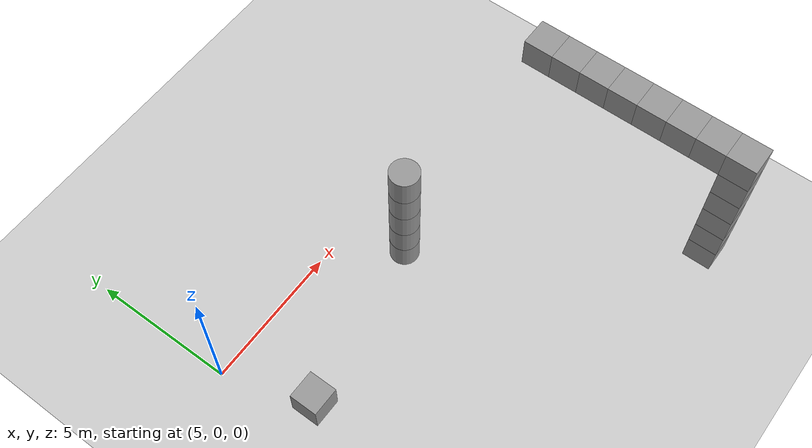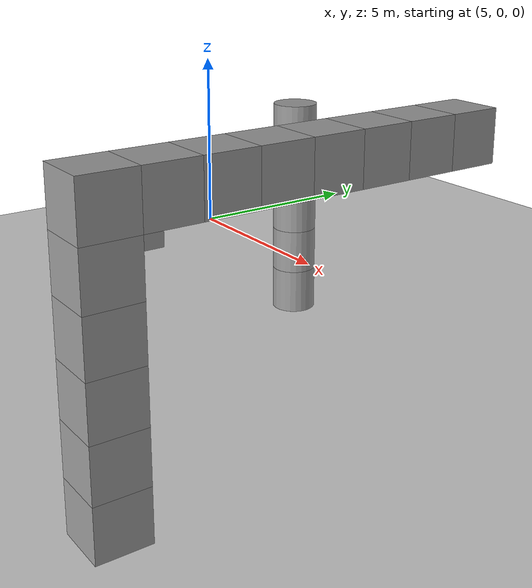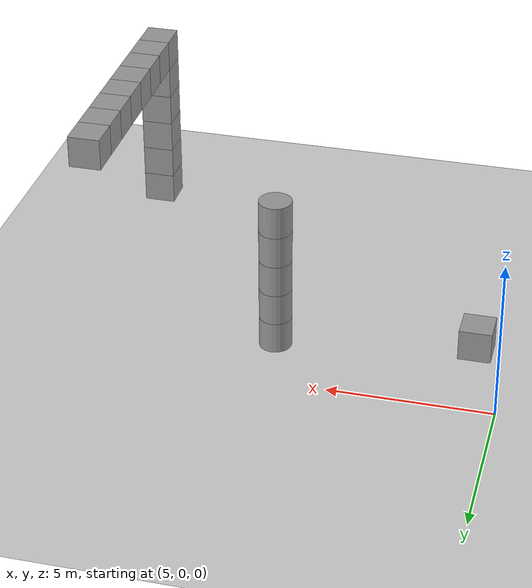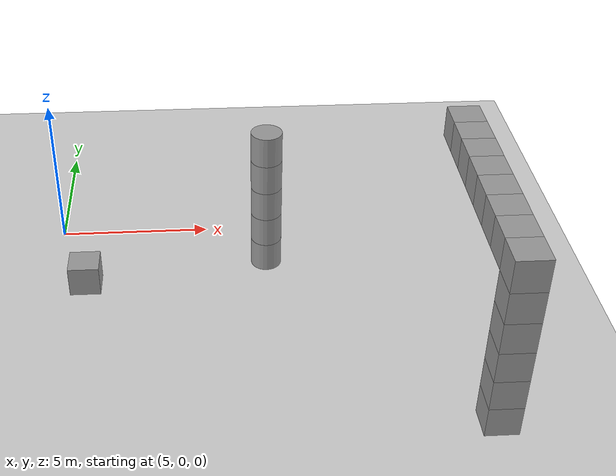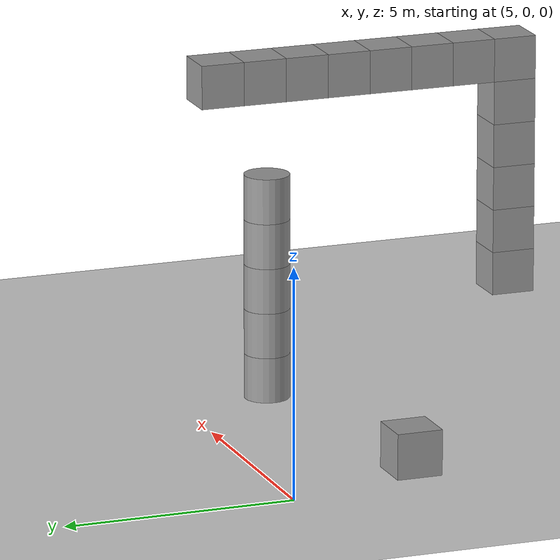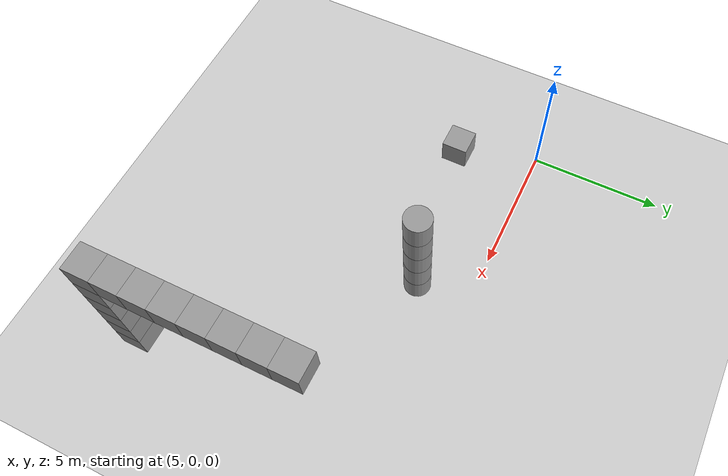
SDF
<sdf version="1.6">
 <world name="default">
  <model name="ground_plane">
   <static>1</static>
   <link name="link">
    <collision name="collision">
     <geometry><plane><normal>0 0 1</normal><size>100 100</size></plane></geometry>
     <surface>
      <contact><collide_bitmask>65535</collide_bitmask></contact>
      <friction><ode><mu>100</mu><mu2>50</mu2></ode></friction>
     </surface>
    </collision>
    <visual name="visual">
     <cast_shadows>0</cast_shadows>
     <geometry><plane><normal>0 0 1</normal><size>100 100</size></plane></geometry>
     <material>
      <script><uri>file://media/materials/scripts/gazebo.material</uri><name>Gazebo/Grey</name></script>
     </material>
    </visual>
   </link>
  </model>
  <model name="obs_cylinder">
   <link name="link">
    <inertial>
     <mass>1</mass>
     <inertia><ixx>0.145833</ixx><ixy>0</ixy><ixz>0</ixz><iyy>0.145833</iyy><iyz>0</iyz><izz>0.125</izz></inertia>
    </inertial>
    <visual name="visual">
     <geometry><cylinder><radius>0.5</radius><length>1</length></cylinder></geometry>
     <material>
      <script><name>Gazebo/Grey</name><uri>file://media/materials/scripts/gazebo.material</uri></script>
     </material>
    </visual>
    <collision name="collision">
     <geometry><cylinder><radius>0.5</radius><length>1</length></cylinder></geometry>
     <surface>
      <friction>
       <ode><mu>1</mu><mu2>1</mu2><fdir1>0 0 0</fdir1><slip1>0</slip1><slip2>0</slip2></ode>
       <torsional>
        <coefficient>1</coefficient>
        <patch_radius>0</patch_radius>
        <surface_radius>0</surface_radius>
        <use_patch_radius>1</use_patch_radius>
        <ode><slip>0</slip></ode>
       </torsional>
      </friction>
      <bounce><restitution_coefficient>0</restitution_coefficient><threshold>1e+06</threshold></bounce>
      <contact>
       <collide_without_contact>0</collide_without_contact>
       <collide_without_contact_bitmask>1</collide_without_contact_bitmask>
       <collide_bitmask>1</collide_bitmask>
       <ode>
        <soft_cfm>0</soft_cfm>
        <soft_erp>0.2</soft_erp>
        <kp>1e+13</kp>
        <kd>1</kd>
        <max_vel>0.01</max_vel>
        <min_depth>0</min_depth>
       </ode>
       <bullet>
        <split_impulse>1</split_impulse>
        <split_impulse_penetration_threshold>-0.01</split_impulse_penetration_threshold>
        <soft_cfm>0</soft_cfm>
        <soft_erp>0.2</soft_erp>
        <kp>1e+13</kp>
        <kd>1</kd>
       </bullet>
      </contact>
     </surface>
    </collision>
   </link>
   <static>1</static>
   <pose>12 -2 0.5 0 -0 0</pose>
  </model>
  <model name="obs_cylinder_clone">
   <link name="link">
    <inertial>
     <mass>1</mass>
     <inertia><ixx>0.145833</ixx><ixy>0</ixy><ixz>0</ixz><iyy>0.145833</iyy><iyz>0</iyz><izz>0.125</izz></inertia>
    </inertial>
    <visual name="visual">
     <geometry><cylinder><radius>0.5</radius><length>1</length></cylinder></geometry>
     <material>
      <script><name>Gazebo/Grey</name><uri>file://media/materials/scripts/gazebo.material</uri></script>
     </material>
    </visual>
    <collision name="collision">
     <geometry><cylinder><radius>0.5</radius><length>1</length></cylinder></geometry>
     <surface>
      <friction>
       <ode><mu>1</mu><mu2>1</mu2><fdir1>0 0 0</fdir1><slip1>0</slip1><slip2>0</slip2></ode>
       <torsional>
        <coefficient>1</coefficient>
        <patch_radius>0</patch_radius>
        <surface_radius>0</surface_radius>
        <use_patch_radius>1</use_patch_radius>
        <ode><slip>0</slip></ode>
       </torsional>
      </friction>
      <bounce><restitution_coefficient>0</restitution_coefficient><threshold>1e+06</threshold></bounce>
      <contact>
       <collide_without_contact>0</collide_without_contact>
       <collide_without_contact_bitmask>1</collide_without_contact_bitmask>
       <collide_bitmask>1</collide_bitmask>
       <ode>
        <soft_cfm>0</soft_cfm>
        <soft_erp>0.2</soft_erp>
        <kp>1e+13</kp>
        <kd>1</kd>
        <max_vel>0.01</max_vel>
        <min_depth>0</min_depth>
       </ode>
       <bullet>
        <split_impulse>1</split_impulse>
        <split_impulse_penetration_threshold>-0.01</split_impulse_penetration_threshold>
        <soft_cfm>0</soft_cfm>
        <soft_erp>0.2</soft_erp>
        <kp>1e+13</kp>
        <kd>1</kd>
       </bullet>
      </contact>
     </surface>
    </collision>
   </link>
   <static>1</static>
   <pose>12 -2 1.5 0 -0 0</pose>
  </model>
  <model name="obs_cylinder_clone_clone">
   <link name="link">
    <inertial>
     <mass>1</mass>
     <inertia><ixx>0.145833</ixx><ixy>0</ixy><ixz>0</ixz><iyy>0.145833</iyy><iyz>0</iyz><izz>0.125</izz></inertia>
    </inertial>
    <visual name="visual">
     <geometry><cylinder><radius>0.5</radius><length>1</length></cylinder></geometry>
     <material>
      <script><name>Gazebo/Grey</name><uri>file://media/materials/scripts/gazebo.material</uri></script>
     </material>
    </visual>
    <collision name="collision">
     <geometry><cylinder><radius>0.5</radius><length>1</length></cylinder></geometry>
     <surface>
      <friction>
       <ode><mu>1</mu><mu2>1</mu2><fdir1>0 0 0</fdir1><slip1>0</slip1><slip2>0</slip2></ode>
       <torsional>
        <coefficient>1</coefficient>
        <patch_radius>0</patch_radius>
        <surface_radius>0</surface_radius>
        <use_patch_radius>1</use_patch_radius>
        <ode><slip>0</slip></ode>
       </torsional>
      </friction>
      <bounce><restitution_coefficient>0</restitution_coefficient><threshold>1e+06</threshold></bounce>
      <contact>
       <collide_without_contact>0</collide_without_contact>
       <collide_without_contact_bitmask>1</collide_without_contact_bitmask>
       <collide_bitmask>1</collide_bitmask>
       <ode>
        <soft_cfm>0</soft_cfm>
        <soft_erp>0.2</soft_erp>
        <kp>1e+13</kp>
        <kd>1</kd>
        <max_vel>0.01</max_vel>
        <min_depth>0</min_depth>
       </ode>
       <bullet>
        <split_impulse>1</split_impulse>
        <split_impulse_penetration_threshold>-0.01</split_impulse_penetration_threshold>
        <soft_cfm>0</soft_cfm>
        <soft_erp>0.2</soft_erp>
        <kp>1e+13</kp>
        <kd>1</kd>
       </bullet>
      </contact>
     </surface>
    </collision>
   </link>
   <static>1</static>
   <pose>12 -2 2.5 0 -0 0</pose>
  </model>
  <model name="obs_cylinder_clone_clone_clone_0">
   <link name="link">
    <inertial>
     <mass>1</mass>
     <inertia><ixx>0.145833</ixx><ixy>0</ixy><ixz>0</ixz><iyy>0.145833</iyy><iyz>0</iyz><izz>0.125</izz></inertia>
    </inertial>
    <visual name="visual">
     <geometry><cylinder><radius>0.5</radius><length>1</length></cylinder></geometry>
     <material>
      <script><name>Gazebo/Grey</name><uri>file://media/materials/scripts/gazebo.material</uri></script>
     </material>
    </visual>
    <collision name="collision">
     <geometry><cylinder><radius>0.5</radius><length>1</length></cylinder></geometry>
     <surface>
      <friction>
       <ode><mu>1</mu><mu2>1</mu2><fdir1>0 0 0</fdir1><slip1>0</slip1><slip2>0</slip2></ode>
       <torsional>
        <coefficient>1</coefficient>
        <patch_radius>0</patch_radius>
        <surface_radius>0</surface_radius>
        <use_patch_radius>1</use_patch_radius>
        <ode><slip>0</slip></ode>
       </torsional>
      </friction>
      <bounce><restitution_coefficient>0</restitution_coefficient><threshold>1e+06</threshold></bounce>
      <contact>
       <collide_without_contact>0</collide_without_contact>
       <collide_without_contact_bitmask>1</collide_without_contact_bitmask>
       <collide_bitmask>1</collide_bitmask>
       <ode>
        <soft_cfm>0</soft_cfm>
        <soft_erp>0.2</soft_erp>
        <kp>1e+13</kp>
        <kd>1</kd>
        <max_vel>0.01</max_vel>
        <min_depth>0</min_depth>
       </ode>
       <bullet>
        <split_impulse>1</split_impulse>
        <split_impulse_penetration_threshold>-0.01</split_impulse_penetration_threshold>
        <soft_cfm>0</soft_cfm>
        <soft_erp>0.2</soft_erp>
        <kp>1e+13</kp>
        <kd>1</kd>
       </bullet>
      </contact>
     </surface>
    </collision>
   </link>
   <static>1</static>
   <pose>12 -2 3.5 0 -0 0</pose>
  </model>
  <model name="obs_cylinder_clone_clone_clone_0_clone_0">
   <link name="link">
    <inertial>
     <mass>1</mass>
     <inertia><ixx>0.145833</ixx><ixy>0</ixy><ixz>0</ixz><iyy>0.145833</iyy><iyz>0</iyz><izz>0.125</izz></inertia>
    </inertial>
    <visual name="visual">
     <geometry><cylinder><radius>0.5</radius><length>1</length></cylinder></geometry>
     <material>
      <script><name>Gazebo/Grey</name><uri>file://media/materials/scripts/gazebo.material</uri></script>
     </material>
    </visual>
    <collision name="collision">
     <geometry><cylinder><radius>0.5</radius><length>1</length></cylinder></geometry>
     <surface>
      <friction>
       <ode><mu>1</mu><mu2>1</mu2><fdir1>0 0 0</fdir1><slip1>0</slip1><slip2>0</slip2></ode>
       <torsional>
        <coefficient>1</coefficient>
        <patch_radius>0</patch_radius>
        <surface_radius>0</surface_radius>
        <use_patch_radius>1</use_patch_radius>
        <ode><slip>0</slip></ode>
       </torsional>
      </friction>
      <bounce><restitution_coefficient>0</restitution_coefficient><threshold>1e+06</threshold></bounce>
      <contact>
       <collide_without_contact>0</collide_without_contact>
       <collide_without_contact_bitmask>1</collide_without_contact_bitmask>
       <collide_bitmask>1</collide_bitmask>
       <ode>
        <soft_cfm>0</soft_cfm>
        <soft_erp>0.2</soft_erp>
        <kp>1e+13</kp>
        <kd>1</kd>
        <max_vel>0.01</max_vel>
        <min_depth>0</min_depth>
       </ode>
       <bullet>
        <split_impulse>1</split_impulse>
        <split_impulse_penetration_threshold>-0.01</split_impulse_penetration_threshold>
        <soft_cfm>0</soft_cfm>
        <soft_erp>0.2</soft_erp>
        <kp>1e+13</kp>
        <kd>1</kd>
       </bullet>
      </contact>
     </surface>
    </collision>
   </link>
   <static>1</static>
   <pose>12 -2 4.5 0 -0 0</pose>
  </model>
  <model name="obs_box_clone_1">
   <link name="link">
    <inertial>
     <mass>1</mass>
     <inertia>
      <ixx>0.166667</ixx>
      <ixy>0</ixy>
      <ixz>0</ixz>
      <iyy>0.166667</iyy>
      <iyz>0</iyz>
      <izz>0.166667</izz>
     </inertia>
    </inertial>
    <visual name="visual">
     <geometry><box><size>1 1 1</size></box></geometry>
     <material>
      <script><name>Gazebo/Grey</name><uri>file://media/materials/scripts/gazebo.material</uri></script>
     </material>
    </visual>
    <collision name="collision">
     <geometry><box><size>1 1 1</size></box></geometry>
     <surface>
      <friction>
       <ode><mu>1</mu><mu2>1</mu2><fdir1>0 0 0</fdir1><slip1>0</slip1><slip2>0</slip2></ode>
       <torsional>
        <coefficient>1</coefficient>
        <patch_radius>0</patch_radius>
        <surface_radius>0</surface_radius>
        <use_patch_radius>1</use_patch_radius>
        <ode><slip>0</slip></ode>
       </torsional>
      </friction>
      <bounce><restitution_coefficient>0</restitution_coefficient><threshold>1e+06</threshold></bounce>
      <contact>
       <collide_without_contact>0</collide_without_contact>
       <collide_without_contact_bitmask>1</collide_without_contact_bitmask>
       <collide_bitmask>1</collide_bitmask>
       <ode>
        <soft_cfm>0</soft_cfm>
        <soft_erp>0.2</soft_erp>
        <kp>1e+13</kp>
        <kd>1</kd>
        <max_vel>0.01</max_vel>
        <min_depth>0</min_depth>
       </ode>
       <bullet>
        <split_impulse>1</split_impulse>
        <split_impulse_penetration_threshold>-0.01</split_impulse_penetration_threshold>
        <soft_cfm>0</soft_cfm>
        <soft_erp>0.2</soft_erp>
        <kp>1e+13</kp>
        <kd>1</kd>
       </bullet>
      </contact>
     </surface>
    </collision>
   </link>
   <static>1</static>
   <pose>18 -10 0.5 0 -0 0</pose>
  </model>
  <model name="obs_box_clone_1_clone">
   <link name="link">
    <inertial>
     <mass>1</mass>
     <inertia>
      <ixx>0.166667</ixx>
      <ixy>0</ixy>
      <ixz>0</ixz>
      <iyy>0.166667</iyy>
      <iyz>0</iyz>
      <izz>0.166667</izz>
     </inertia>
    </inertial>
    <visual name="visual">
     <geometry><box><size>1 1 1</size></box></geometry>
     <material>
      <script><name>Gazebo/Grey</name><uri>file://media/materials/scripts/gazebo.material</uri></script>
     </material>
    </visual>
    <collision name="collision">
     <geometry><box><size>1 1 1</size></box></geometry>
     <surface>
      <friction>
       <ode><mu>1</mu><mu2>1</mu2><fdir1>0 0 0</fdir1><slip1>0</slip1><slip2>0</slip2></ode>
       <torsional>
        <coefficient>1</coefficient>
        <patch_radius>0</patch_radius>
        <surface_radius>0</surface_radius>
        <use_patch_radius>1</use_patch_radius>
        <ode><slip>0</slip></ode>
       </torsional>
      </friction>
      <bounce><restitution_coefficient>0</restitution_coefficient><threshold>1e+06</threshold></bounce>
      <contact>
       <collide_without_contact>0</collide_without_contact>
       <collide_without_contact_bitmask>1</collide_without_contact_bitmask>
       <collide_bitmask>1</collide_bitmask>
       <ode>
        <soft_cfm>0</soft_cfm>
        <soft_erp>0.2</soft_erp>
        <kp>1e+13</kp>
        <kd>1</kd>
        <max_vel>0.01</max_vel>
        <min_depth>0</min_depth>
       </ode>
       <bullet>
        <split_impulse>1</split_impulse>
        <split_impulse_penetration_threshold>-0.01</split_impulse_penetration_threshold>
        <soft_cfm>0</soft_cfm>
        <soft_erp>0.2</soft_erp>
        <kp>1e+13</kp>
        <kd>1</kd>
       </bullet>
      </contact>
     </surface>
    </collision>
   </link>
   <static>1</static>
   <pose>18 -10 1.5 0 -0 0</pose>
  </model>
  <model name="obs_box_clone_1_clone_clone">
   <link name="link">
    <inertial>
     <mass>1</mass>
     <inertia>
      <ixx>0.166667</ixx>
      <ixy>0</ixy>
      <ixz>0</ixz>
      <iyy>0.166667</iyy>
      <iyz>0</iyz>
      <izz>0.166667</izz>
     </inertia>
    </inertial>
    <visual name="visual">
     <geometry><box><size>1 1 1</size></box></geometry>
     <material>
      <script><name>Gazebo/Grey</name><uri>file://media/materials/scripts/gazebo.material</uri></script>
     </material>
    </visual>
    <collision name="collision">
     <geometry><box><size>1 1 1</size></box></geometry>
     <surface>
      <friction>
       <ode><mu>1</mu><mu2>1</mu2><fdir1>0 0 0</fdir1><slip1>0</slip1><slip2>0</slip2></ode>
       <torsional>
        <coefficient>1</coefficient>
        <patch_radius>0</patch_radius>
        <surface_radius>0</surface_radius>
        <use_patch_radius>1</use_patch_radius>
        <ode><slip>0</slip></ode>
       </torsional>
      </friction>
      <bounce><restitution_coefficient>0</restitution_coefficient><threshold>1e+06</threshold></bounce>
      <contact>
       <collide_without_contact>0</collide_without_contact>
       <collide_without_contact_bitmask>1</collide_without_contact_bitmask>
       <collide_bitmask>1</collide_bitmask>
       <ode>
        <soft_cfm>0</soft_cfm>
        <soft_erp>0.2</soft_erp>
        <kp>1e+13</kp>
        <kd>1</kd>
        <max_vel>0.01</max_vel>
        <min_depth>0</min_depth>
       </ode>
       <bullet>
        <split_impulse>1</split_impulse>
        <split_impulse_penetration_threshold>-0.01</split_impulse_penetration_threshold>
        <soft_cfm>0</soft_cfm>
        <soft_erp>0.2</soft_erp>
        <kp>1e+13</kp>
        <kd>1</kd>
       </bullet>
      </contact>
     </surface>
    </collision>
   </link>
   <static>1</static>
   <pose>18 -10 2.5 0 -0 0</pose>
  </model>
  <model name="obs_box_clone_1_clone_clone_clone">
   <link name="link">
    <inertial>
     <mass>1</mass>
     <inertia>
      <ixx>0.166667</ixx>
      <ixy>0</ixy>
      <ixz>0</ixz>
      <iyy>0.166667</iyy>
      <iyz>0</iyz>
      <izz>0.166667</izz>
     </inertia>
    </inertial>
    <visual name="visual">
     <geometry><box><size>1 1 1</size></box></geometry>
     <material>
      <script><name>Gazebo/Grey</name><uri>file://media/materials/scripts/gazebo.material</uri></script>
     </material>
    </visual>
    <collision name="collision">
     <geometry><box><size>1 1 1</size></box></geometry>
     <surface>
      <friction>
       <ode><mu>1</mu><mu2>1</mu2><fdir1>0 0 0</fdir1><slip1>0</slip1><slip2>0</slip2></ode>
       <torsional>
        <coefficient>1</coefficient>
        <patch_radius>0</patch_radius>
        <surface_radius>0</surface_radius>
        <use_patch_radius>1</use_patch_radius>
        <ode><slip>0</slip></ode>
       </torsional>
      </friction>
      <bounce><restitution_coefficient>0</restitution_coefficient><threshold>1e+06</threshold></bounce>
      <contact>
       <collide_without_contact>0</collide_without_contact>
       <collide_without_contact_bitmask>1</collide_without_contact_bitmask>
       <collide_bitmask>1</collide_bitmask>
       <ode>
        <soft_cfm>0</soft_cfm>
        <soft_erp>0.2</soft_erp>
        <kp>1e+13</kp>
        <kd>1</kd>
        <max_vel>0.01</max_vel>
        <min_depth>0</min_depth>
       </ode>
       <bullet>
        <split_impulse>1</split_impulse>
        <split_impulse_penetration_threshold>-0.01</split_impulse_penetration_threshold>
        <soft_cfm>0</soft_cfm>
        <soft_erp>0.2</soft_erp>
        <kp>1e+13</kp>
        <kd>1</kd>
       </bullet>
      </contact>
     </surface>
    </collision>
   </link>
   <static>1</static>
   <pose>18 -10 3.5 0 -0 0</pose>
  </model>
  <model name="obs_box_clone_1_clone_clone_clone_clone">
   <link name="link">
    <inertial>
     <mass>1</mass>
     <inertia>
      <ixx>0.166667</ixx>
      <ixy>0</ixy>
      <ixz>0</ixz>
      <iyy>0.166667</iyy>
      <iyz>0</iyz>
      <izz>0.166667</izz>
     </inertia>
    </inertial>
    <visual name="visual">
     <geometry><box><size>1 1 1</size></box></geometry>
     <material>
      <script><name>Gazebo/Grey</name><uri>file://media/materials/scripts/gazebo.material</uri></script>
     </material>
    </visual>
    <collision name="collision">
     <geometry><box><size>1 1 1</size></box></geometry>
     <surface>
      <friction>
       <ode><mu>1</mu><mu2>1</mu2><fdir1>0 0 0</fdir1><slip1>0</slip1><slip2>0</slip2></ode>
       <torsional>
        <coefficient>1</coefficient>
        <patch_radius>0</patch_radius>
        <surface_radius>0</surface_radius>
        <use_patch_radius>1</use_patch_radius>
        <ode><slip>0</slip></ode>
       </torsional>
      </friction>
      <bounce><restitution_coefficient>0</restitution_coefficient><threshold>1e+06</threshold></bounce>
      <contact>
       <collide_without_contact>0</collide_without_contact>
       <collide_without_contact_bitmask>1</collide_without_contact_bitmask>
       <collide_bitmask>1</collide_bitmask>
       <ode>
        <soft_cfm>0</soft_cfm>
        <soft_erp>0.2</soft_erp>
        <kp>1e+13</kp>
        <kd>1</kd>
        <max_vel>0.01</max_vel>
        <min_depth>0</min_depth>
       </ode>
       <bullet>
        <split_impulse>1</split_impulse>
        <split_impulse_penetration_threshold>-0.01</split_impulse_penetration_threshold>
        <soft_cfm>0</soft_cfm>
        <soft_erp>0.2</soft_erp>
        <kp>1e+13</kp>
        <kd>1</kd>
       </bullet>
      </contact>
     </surface>
    </collision>
   </link>
   <static>1</static>
   <pose>18 -10 4.5 0 -0 0</pose>
  </model>
  <model name="obs_box_clone_1_clone_clone_clone_clone_clone">
   <link name="link">
    <inertial>
     <mass>1</mass>
     <inertia>
      <ixx>0.166667</ixx>
      <ixy>0</ixy>
      <ixz>0</ixz>
      <iyy>0.166667</iyy>
      <iyz>0</iyz>
      <izz>0.166667</izz>
     </inertia>
    </inertial>
    <visual name="visual">
     <geometry><box><size>1 1 1</size></box></geometry>
     <material>
      <script><name>Gazebo/Grey</name><uri>file://media/materials/scripts/gazebo.material</uri></script>
     </material>
    </visual>
    <collision name="collision">
     <geometry><box><size>1 1 1</size></box></geometry>
     <surface>
      <friction>
       <ode><mu>1</mu><mu2>1</mu2><fdir1>0 0 0</fdir1><slip1>0</slip1><slip2>0</slip2></ode>
       <torsional>
        <coefficient>1</coefficient>
        <patch_radius>0</patch_radius>
        <surface_radius>0</surface_radius>
        <use_patch_radius>1</use_patch_radius>
        <ode><slip>0</slip></ode>
       </torsional>
      </friction>
      <bounce><restitution_coefficient>0</restitution_coefficient><threshold>1e+06</threshold></bounce>
      <contact>
       <collide_without_contact>0</collide_without_contact>
       <collide_without_contact_bitmask>1</collide_without_contact_bitmask>
       <collide_bitmask>1</collide_bitmask>
       <ode>
        <soft_cfm>0</soft_cfm>
        <soft_erp>0.2</soft_erp>
        <kp>1e+13</kp>
        <kd>1</kd>
        <max_vel>0.01</max_vel>
        <min_depth>0</min_depth>
       </ode>
       <bullet>
        <split_impulse>1</split_impulse>
        <split_impulse_penetration_threshold>-0.01</split_impulse_penetration_threshold>
        <soft_cfm>0</soft_cfm>
        <soft_erp>0.2</soft_erp>
        <kp>1e+13</kp>
        <kd>1</kd>
       </bullet>
      </contact>
     </surface>
    </collision>
   </link>
   <static>1</static>
   <pose>18 -10 5.5 0 -0 0</pose>
  </model>
  <model name="obs_box_clone_1_clone_clone_clone_clone_clone_clone">
   <link name="link">
    <inertial>
     <mass>1</mass>
     <inertia>
      <ixx>0.166667</ixx>
      <ixy>0</ixy>
      <ixz>0</ixz>
      <iyy>0.166667</iyy>
      <iyz>0</iyz>
      <izz>0.166667</izz>
     </inertia>
    </inertial>
    <visual name="visual">
     <geometry><box><size>1 1 1</size></box></geometry>
     <material>
      <script><name>Gazebo/Grey</name><uri>file://media/materials/scripts/gazebo.material</uri></script>
     </material>
    </visual>
    <collision name="collision">
     <geometry><box><size>1 1 1</size></box></geometry>
     <surface>
      <friction>
       <ode><mu>1</mu><mu2>1</mu2><fdir1>0 0 0</fdir1><slip1>0</slip1><slip2>0</slip2></ode>
       <torsional>
        <coefficient>1</coefficient>
        <patch_radius>0</patch_radius>
        <surface_radius>0</surface_radius>
        <use_patch_radius>1</use_patch_radius>
        <ode><slip>0</slip></ode>
       </torsional>
      </friction>
      <bounce><restitution_coefficient>0</restitution_coefficient><threshold>1e+06</threshold></bounce>
      <contact>
       <collide_without_contact>0</collide_without_contact>
       <collide_without_contact_bitmask>1</collide_without_contact_bitmask>
       <collide_bitmask>1</collide_bitmask>
       <ode>
        <soft_cfm>0</soft_cfm>
        <soft_erp>0.2</soft_erp>
        <kp>1e+13</kp>
        <kd>1</kd>
        <max_vel>0.01</max_vel>
        <min_depth>0</min_depth>
       </ode>
       <bullet>
        <split_impulse>1</split_impulse>
        <split_impulse_penetration_threshold>-0.01</split_impulse_penetration_threshold>
        <soft_cfm>0</soft_cfm>
        <soft_erp>0.2</soft_erp>
        <kp>1e+13</kp>
        <kd>1</kd>
       </bullet>
      </contact>
     </surface>
    </collision>
   </link>
   <static>1</static>
   <pose>18 -7 5.5 0 -0 0</pose>
  </model>
  <model name="obs_box_clone_1_clone_clone_clone_clone_clone_clone_clone">
   <link name="link">
    <inertial>
     <mass>1</mass>
     <inertia>
      <ixx>0.166667</ixx>
      <ixy>0</ixy>
      <ixz>0</ixz>
      <iyy>0.166667</iyy>
      <iyz>0</iyz>
      <izz>0.166667</izz>
     </inertia>
    </inertial>
    <visual name="visual">
     <geometry><box><size>1 1 1</size></box></geometry>
     <material>
      <script><name>Gazebo/Grey</name><uri>file://media/materials/scripts/gazebo.material</uri></script>
     </material>
    </visual>
    <collision name="collision">
     <geometry><box><size>1 1 1</size></box></geometry>
     <surface>
      <friction>
       <ode><mu>1</mu><mu2>1</mu2><fdir1>0 0 0</fdir1><slip1>0</slip1><slip2>0</slip2></ode>
       <torsional>
        <coefficient>1</coefficient>
        <patch_radius>0</patch_radius>
        <surface_radius>0</surface_radius>
        <use_patch_radius>1</use_patch_radius>
        <ode><slip>0</slip></ode>
       </torsional>
      </friction>
      <bounce><restitution_coefficient>0</restitution_coefficient><threshold>1e+06</threshold></bounce>
      <contact>
       <collide_without_contact>0</collide_without_contact>
       <collide_without_contact_bitmask>1</collide_without_contact_bitmask>
       <collide_bitmask>1</collide_bitmask>
       <ode>
        <soft_cfm>0</soft_cfm>
        <soft_erp>0.2</soft_erp>
        <kp>1e+13</kp>
        <kd>1</kd>
        <max_vel>0.01</max_vel>
        <min_depth>0</min_depth>
       </ode>
       <bullet>
        <split_impulse>1</split_impulse>
        <split_impulse_penetration_threshold>-0.01</split_impulse_penetration_threshold>
        <soft_cfm>0</soft_cfm>
        <soft_erp>0.2</soft_erp>
        <kp>1e+13</kp>
        <kd>1</kd>
       </bullet>
      </contact>
     </surface>
    </collision>
   </link>
   <static>1</static>
   <pose>18 -6 5.5 0 -0 0</pose>
  </model>
  <model name="obs_box_clone_1_clone_clone_clone_clone_clone_clone_clone_0">
   <link name="link">
    <inertial>
     <mass>1</mass>
     <inertia>
      <ixx>0.166667</ixx>
      <ixy>0</ixy>
      <ixz>0</ixz>
      <iyy>0.166667</iyy>
      <iyz>0</iyz>
      <izz>0.166667</izz>
     </inertia>
    </inertial>
    <visual name="visual">
     <geometry><box><size>1 1 1</size></box></geometry>
     <material>
      <script><name>Gazebo/Grey</name><uri>file://media/materials/scripts/gazebo.material</uri></script>
     </material>
    </visual>
    <collision name="collision">
     <geometry><box><size>1 1 1</size></box></geometry>
     <surface>
      <friction>
       <ode><mu>1</mu><mu2>1</mu2><fdir1>0 0 0</fdir1><slip1>0</slip1><slip2>0</slip2></ode>
       <torsional>
        <coefficient>1</coefficient>
        <patch_radius>0</patch_radius>
        <surface_radius>0</surface_radius>
        <use_patch_radius>1</use_patch_radius>
        <ode><slip>0</slip></ode>
       </torsional>
      </friction>
      <bounce><restitution_coefficient>0</restitution_coefficient><threshold>1e+06</threshold></bounce>
      <contact>
       <collide_without_contact>0</collide_without_contact>
       <collide_without_contact_bitmask>1</collide_without_contact_bitmask>
       <collide_bitmask>1</collide_bitmask>
       <ode>
        <soft_cfm>0</soft_cfm>
        <soft_erp>0.2</soft_erp>
        <kp>1e+13</kp>
        <kd>1</kd>
        <max_vel>0.01</max_vel>
        <min_depth>0</min_depth>
       </ode>
       <bullet>
        <split_impulse>1</split_impulse>
        <split_impulse_penetration_threshold>-0.01</split_impulse_penetration_threshold>
        <soft_cfm>0</soft_cfm>
        <soft_erp>0.2</soft_erp>
        <kp>1e+13</kp>
        <kd>1</kd>
       </bullet>
      </contact>
     </surface>
    </collision>
   </link>
   <static>1</static>
   <pose>18 -5 5.5 0 -0 0</pose>
  </model>
  <model name="obs_box_clone_1_clone_clone_clone_clone_clone_clone_clone_1">
   <link name="link">
    <inertial>
     <mass>1</mass>
     <inertia>
      <ixx>0.166667</ixx>
      <ixy>0</ixy>
      <ixz>0</ixz>
      <iyy>0.166667</iyy>
      <iyz>0</iyz>
      <izz>0.166667</izz>
     </inertia>
    </inertial>
    <visual name="visual">
     <geometry><box><size>1 1 1</size></box></geometry>
     <material>
      <script><name>Gazebo/Grey</name><uri>file://media/materials/scripts/gazebo.material</uri></script>
     </material>
    </visual>
    <collision name="collision">
     <geometry><box><size>1 1 1</size></box></geometry>
     <surface>
      <friction>
       <ode><mu>1</mu><mu2>1</mu2><fdir1>0 0 0</fdir1><slip1>0</slip1><slip2>0</slip2></ode>
       <torsional>
        <coefficient>1</coefficient>
        <patch_radius>0</patch_radius>
        <surface_radius>0</surface_radius>
        <use_patch_radius>1</use_patch_radius>
        <ode><slip>0</slip></ode>
       </torsional>
      </friction>
      <bounce><restitution_coefficient>0</restitution_coefficient><threshold>1e+06</threshold></bounce>
      <contact>
       <collide_without_contact>0</collide_without_contact>
       <collide_without_contact_bitmask>1</collide_without_contact_bitmask>
       <collide_bitmask>1</collide_bitmask>
       <ode>
        <soft_cfm>0</soft_cfm>
        <soft_erp>0.2</soft_erp>
        <kp>1e+13</kp>
        <kd>1</kd>
        <max_vel>0.01</max_vel>
        <min_depth>0</min_depth>
       </ode>
       <bullet>
        <split_impulse>1</split_impulse>
        <split_impulse_penetration_threshold>-0.01</split_impulse_penetration_threshold>
        <soft_cfm>0</soft_cfm>
        <soft_erp>0.2</soft_erp>
        <kp>1e+13</kp>
        <kd>1</kd>
       </bullet>
      </contact>
     </surface>
    </collision>
   </link>
   <static>1</static>
   <pose>18 -4 5.5 0 -0 0</pose>
  </model>
  <model name="obs_box_clone_1_clone_clone_clone_clone_clone_clone_clone_2">
   <link name="link">
    <inertial>
     <mass>1</mass>
     <inertia>
      <ixx>0.166667</ixx>
      <ixy>0</ixy>
      <ixz>0</ixz>
      <iyy>0.166667</iyy>
      <iyz>0</iyz>
      <izz>0.166667</izz>
     </inertia>
    </inertial>
    <visual name="visual">
     <geometry><box><size>1 1 1</size></box></geometry>
     <material>
      <script><name>Gazebo/Grey</name><uri>file://media/materials/scripts/gazebo.material</uri></script>
     </material>
    </visual>
    <collision name="collision">
     <geometry><box><size>1 1 1</size></box></geometry>
     <surface>
      <friction>
       <ode><mu>1</mu><mu2>1</mu2><fdir1>0 0 0</fdir1><slip1>0</slip1><slip2>0</slip2></ode>
       <torsional>
        <coefficient>1</coefficient>
        <patch_radius>0</patch_radius>
        <surface_radius>0</surface_radius>
        <use_patch_radius>1</use_patch_radius>
        <ode><slip>0</slip></ode>
       </torsional>
      </friction>
      <bounce><restitution_coefficient>0</restitution_coefficient><threshold>1e+06</threshold></bounce>
      <contact>
       <collide_without_contact>0</collide_without_contact>
       <collide_without_contact_bitmask>1</collide_without_contact_bitmask>
       <collide_bitmask>1</collide_bitmask>
       <ode>
        <soft_cfm>0</soft_cfm>
        <soft_erp>0.2</soft_erp>
        <kp>1e+13</kp>
        <kd>1</kd>
        <max_vel>0.01</max_vel>
        <min_depth>0</min_depth>
       </ode>
       <bullet>
        <split_impulse>1</split_impulse>
        <split_impulse_penetration_threshold>-0.01</split_impulse_penetration_threshold>
        <soft_cfm>0</soft_cfm>
        <soft_erp>0.2</soft_erp>
        <kp>1e+13</kp>
        <kd>1</kd>
       </bullet>
      </contact>
     </surface>
    </collision>
   </link>
   <static>1</static>
   <pose>18 -3 5.5 0 -0 0</pose>
  </model>
  <model name="obs_box_clone_3">
   <link name="link">
    <inertial>
     <mass>1</mass>
     <inertia>
      <ixx>0.166667</ixx>
      <ixy>0</ixy>
      <ixz>0</ixz>
      <iyy>0.166667</iyy>
      <iyz>0</iyz>
      <izz>0.166667</izz>
     </inertia>
    </inertial>
    <visual name="visual">
     <geometry><box><size>1 1 1</size></box></geometry>
     <material>
      <script><name>Gazebo/Grey</name><uri>file://media/materials/scripts/gazebo.material</uri></script>
     </material>
    </visual>
    <collision name="collision">
     <geometry><box><size>1 1 1</size></box></geometry>
     <surface>
      <friction>
       <ode><mu>1</mu><mu2>1</mu2><fdir1>0 0 0</fdir1><slip1>0</slip1><slip2>0</slip2></ode>
       <torsional>
        <coefficient>1</coefficient>
        <patch_radius>0</patch_radius>
        <surface_radius>0</surface_radius>
        <use_patch_radius>1</use_patch_radius>
        <ode><slip>0</slip></ode>
       </torsional>
      </friction>
      <bounce><restitution_coefficient>0</restitution_coefficient><threshold>1e+06</threshold></bounce>
      <contact>
       <collide_without_contact>0</collide_without_contact>
       <collide_without_contact_bitmask>1</collide_without_contact_bitmask>
       <collide_bitmask>1</collide_bitmask>
       <ode>
        <soft_cfm>0</soft_cfm>
        <soft_erp>0.2</soft_erp>
        <kp>1e+13</kp>
        <kd>1</kd>
        <max_vel>0.01</max_vel>
        <min_depth>0</min_depth>
       </ode>
       <bullet>
        <split_impulse>1</split_impulse>
        <split_impulse_penetration_threshold>-0.01</split_impulse_penetration_threshold>
        <soft_cfm>0</soft_cfm>
        <soft_erp>0.2</soft_erp>
        <kp>1e+13</kp>
        <kd>1</kd>
       </bullet>
      </contact>
     </surface>
    </collision>
   </link>
   <static>1</static>
   <pose>6 -3 0.5 0 -0 0</pose>
  </model>
  <model name="obs_box_clone_1_clone_clone_clone_clone_clone_clone_clone_12">
   <link name="link">
    <inertial>
     <mass>1</mass>
     <inertia>
      <ixx>0.166667</ixx>
      <ixy>0</ixy>
      <ixz>0</ixz>
      <iyy>0.166667</iyy>
      <iyz>0</iyz>
      <izz>0.166667</izz>
     </inertia>
    </inertial>
    <visual name="visual">
     <geometry><box><size>1 1 1</size></box></geometry>
     <material>
      <script><name>Gazebo/Grey</name><uri>file://media/materials/scripts/gazebo.material</uri></script>
     </material>
    </visual>
    <collision name="collision">
     <geometry><box><size>1 1 1</size></box></geometry>
     <surface>
      <friction>
       <ode><mu>1</mu><mu2>1</mu2><fdir1>0 0 0</fdir1><slip1>0</slip1><slip2>0</slip2></ode>
       <torsional>
        <coefficient>1</coefficient>
        <patch_radius>0</patch_radius>
        <surface_radius>0</surface_radius>
        <use_patch_radius>1</use_patch_radius>
        <ode><slip>0</slip></ode>
       </torsional>
      </friction>
      <bounce><restitution_coefficient>0</restitution_coefficient><threshold>1e+06</threshold></bounce>
      <contact>
       <collide_without_contact>0</collide_without_contact>
       <collide_without_contact_bitmask>1</collide_without_contact_bitmask>
       <collide_bitmask>1</collide_bitmask>
       <ode>
        <soft_cfm>0</soft_cfm>
        <soft_erp>0.2</soft_erp>
        <kp>1e+13</kp>
        <kd>1</kd>
        <max_vel>0.01</max_vel>
        <min_depth>0</min_depth>
       </ode>
       <bullet>
        <split_impulse>1</split_impulse>
        <split_impulse_penetration_threshold>-0.01</split_impulse_penetration_threshold>
        <soft_cfm>0</soft_cfm>
        <soft_erp>0.2</soft_erp>
        <kp>1e+13</kp>
        <kd>1</kd>
       </bullet>
      </contact>
     </surface>
    </collision>
   </link>
   <static>1</static>
   <pose>18 -9 5.5 0 -0 0</pose>
  </model>
  <model name="obs_box_clone_1_clone_clone_clone_clone_clone_clone_clone_13">
   <link name="link">
    <inertial>
     <mass>1</mass>
     <inertia>
      <ixx>0.166667</ixx>
      <ixy>0</ixy>
      <ixz>0</ixz>
      <iyy>0.166667</iyy>
      <iyz>0</iyz>
      <izz>0.166667</izz>
     </inertia>
    </inertial>
    <visual name="visual">
     <geometry><box><size>1 1 1</size></box></geometry>
     <material>
      <script><name>Gazebo/Grey</name><uri>file://media/materials/scripts/gazebo.material</uri></script>
     </material>
    </visual>
    <collision name="collision">
     <geometry><box><size>1 1 1</size></box></geometry>
     <surface>
      <friction>
       <ode><mu>1</mu><mu2>1</mu2><fdir1>0 0 0</fdir1><slip1>0</slip1><slip2>0</slip2></ode>
       <torsional>
        <coefficient>1</coefficient>
        <patch_radius>0</patch_radius>
        <surface_radius>0</surface_radius>
        <use_patch_radius>1</use_patch_radius>
        <ode><slip>0</slip></ode>
       </torsional>
      </friction>
      <bounce><restitution_coefficient>0</restitution_coefficient><threshold>1e+06</threshold></bounce>
      <contact>
       <collide_without_contact>0</collide_without_contact>
       <collide_without_contact_bitmask>1</collide_without_contact_bitmask>
       <collide_bitmask>1</collide_bitmask>
       <ode>
        <soft_cfm>0</soft_cfm>
        <soft_erp>0.2</soft_erp>
        <kp>1e+13</kp>
        <kd>1</kd>
        <max_vel>0.01</max_vel>
        <min_depth>0</min_depth>
       </ode>
       <bullet>
        <split_impulse>1</split_impulse>
        <split_impulse_penetration_threshold>-0.01</split_impulse_penetration_threshold>
        <soft_cfm>0</soft_cfm>
        <soft_erp>0.2</soft_erp>
        <kp>1e+13</kp>
        <kd>1</kd>
       </bullet>
      </contact>
     </surface>
    </collision>
   </link>
   <static>1</static>
   <pose>18 -8 5.5 0 -0 0</pose>
  </model>
 </world>
</sdf>
